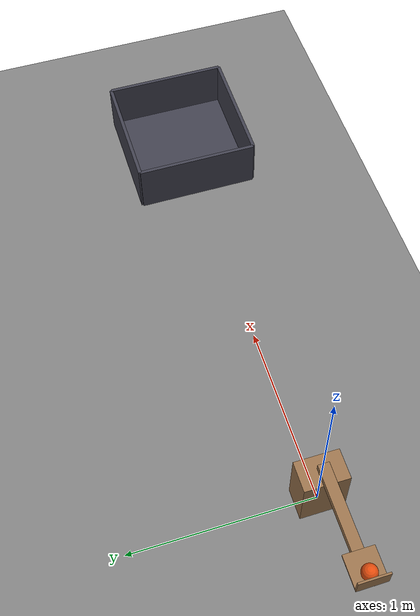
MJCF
<mujoco model="catapult_into_a_bucket">
  <compiler angle="radian"/>
  <option timestep="0.002"/>
  <worldbody>
    <geom name="floor" type="plane" size="6 6 0.1" friction="0.8 0.005 0.002"/>
    <geom name="catapult_stand" type="box" pos="0 0 0.17" size="0.08 0.12 0.17" rgba="0.6 0.45 0.3 1"/>
    <body name="catapult" pos="0 0 0.4">
      <joint name="catapult_hinge" type="hinge" pos="0 0 0" axis="0 1 0" limited="true" range="0 0.698132" stiffness="5.3" springref="1.5708" damping="0.01" armature="0.002"/>
      <geom name="catapult_arm" type="box" pos="-0.3 0 0" size="0.3 0.03 0.02" mass="0.4" rgba="0.6 0.45 0.3 1"/>
      <geom name="catapult_scoop_base" type="box" pos="-0.52 0 0.025" size="0.08 0.08 0.005" mass="0.02" rgba="0.6 0.45 0.3 1"/>
      <geom name="catapult_scoop_back" type="box" pos="-0.605 0 0.07" size="0.005 0.08 0.05" mass="0.01" rgba="0.6 0.45 0.3 1"/>
    </body>
    <body name="ball" pos="-0.56 0 0.47">
      <freejoint/>
      <geom name="ball" type="sphere" pos="0 0 0" size="0.04" mass="0.1" condim="6" friction="0.8 0.01 0.004" solref="0.01 1" rgba="0.9 0.3 0.05 1"/>
    </body>
    <body name="bucket">
      <geom name="bucket_base" type="box" pos="2.44 0 0.01" size="0.35 0.35 0.01" friction="1 0.02 0.01" solref="0.01 1" rgba="0.25 0.25 0.3 1"/>
      <geom name="bucket_near_wall" type="box" pos="2.09 0 0.15" size="0.01 0.35 0.15" friction="1 0.02 0.01" solref="0.01 1" rgba="0.25 0.25 0.3 1"/>
      <geom name="bucket_far_wall" type="box" pos="2.79 0 0.15" size="0.01 0.35 0.15" friction="1 0.02 0.01" solref="0.01 1" rgba="0.25 0.25 0.3 1"/>
      <geom name="bucket_left_wall" type="box" pos="2.44 0.35 0.15" size="0.35 0.01 0.15" friction="1 0.02 0.01" solref="0.01 1" rgba="0.25 0.25 0.3 1"/>
      <geom name="bucket_right_wall" type="box" pos="2.44 -0.35 0.15" size="0.35 0.01 0.15" friction="1 0.02 0.01" solref="0.01 1" rgba="0.25 0.25 0.3 1"/>
    </body>
  </worldbody>
  <keyframe>
    <key name="start" qpos="0 -0.56 0 0.47 1 0 0 0" qvel="0 0 0 0 0 0 0"/>
  </keyframe>
</mujoco>
